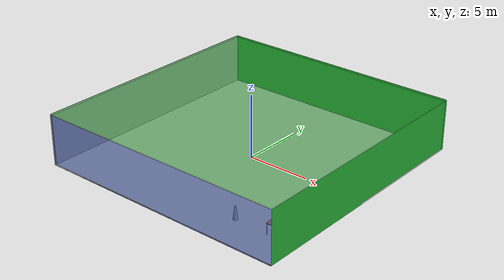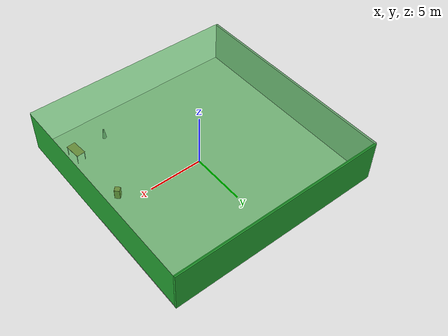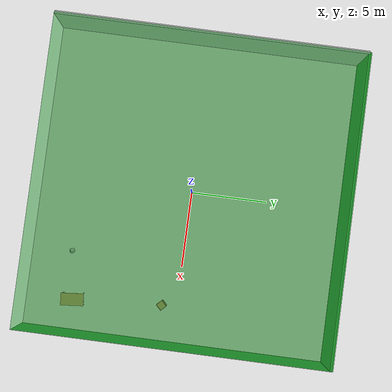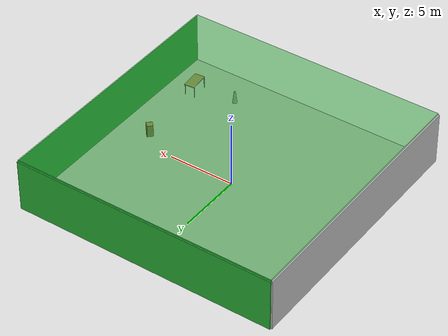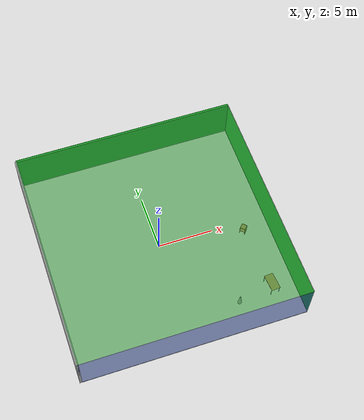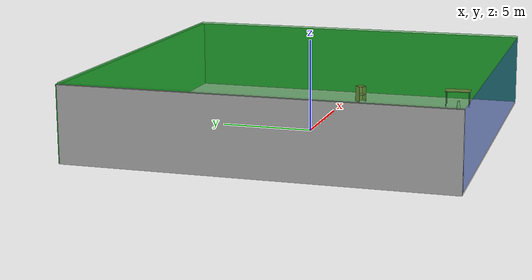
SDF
<sdf version="1.4">
 <world name="default">
  <physics type="ode">
   <max_step_size>0.001</max_step_size>
   <real_time_factor>1</real_time_factor>
   <real_time_update_rate>1000</real_time_update_rate>
   <gravity>0 0 -9.8</gravity>
  </physics>
  <scene><ambient>0.4 0.4 0.4 1</ambient><background>0.7 0.7 0.7 1</background><shadows>1</shadows></scene>
  <model name="Surrounding">
   <static>1</static>
   <link name="Ceiling">
    <collision name="Ceiling_Collision"><geometry><box><size>20 20 0.1</size></box></geometry></collision>
    <visual name="Ceiling_Visual">
     <geometry><box><size>20 20 0.1</size></box></geometry>
     <material>
      <script><uri>file://media/materials/scripts/gazebo.material</uri><name>Gazebo/GreenTransparent</name></script>
     </material>
    </visual>
    <pose>0 0 4.05 0 0 0</pose>
   </link>
   <link name="Wall_South">
    <collision name="Wall_South_Collision">
     <geometry><box><size>20 0 4</size></box></geometry>
     <pose>0 0 2 0 -0 0</pose>
    </collision>
    <visual name="Wall_South_Visual">
     <pose>0 0 2 0 -0 0</pose>
     <geometry><box><size>20 0 4</size></box></geometry>
     <material>
      <script><uri>file://media/materials/scripts/gazebo.material</uri><name>Gazebo/BlueTransparent</name></script>
     </material>
    </visual>
    <velocity_decay><linear>0</linear><angular>0</angular></velocity_decay>
    <pose>0 -10 0 0 -0 0</pose>
   </link>
   <link name="Wall_East">
    <collision name="Wall_21_Collision">
     <geometry><box><size>20 0 4</size></box></geometry>
     <pose>0 0 2 0 -0 0</pose>
    </collision>
    <visual name="Wall_21_Visual">
     <pose>0 0 2 0 -0 0</pose>
     <geometry><box><size>20 0 4</size></box></geometry>
     <material>
      <script><uri>file://media/materials/scripts/gazebo.material</uri><name>Gazebo/GreenGlow</name></script>
     </material>
    </visual>
    <velocity_decay><linear>0</linear><angular>0</angular></velocity_decay>
    <pose>10 0 0 0 -0 1.5708</pose>
   </link>
   <link name="Wall_North">
    <collision name="Wall_22_Collision">
     <geometry><box><size>20 0.2 4</size></box></geometry>
     <pose>0 0 2 0 -0 0</pose>
    </collision>
    <visual name="Wall_22_Visual">
     <pose>0 0 2 0 -0 0</pose>
     <geometry><box><size>20 0.2 4</size></box></geometry>
     <material>
      <script><uri>file://media/materials/scripts/gazebo.material</uri><name>Gazebo/Green</name></script>
     </material>
    </visual>
    <velocity_decay><linear>0</linear><angular>0</angular></velocity_decay>
    <pose>0 10 0 0 -0 0</pose>
   </link>
   <link name="Wall_West">
    <collision name="Wall_23_Collision">
     <geometry><box><size>20 0.2 4</size></box></geometry>
     <pose>0 0 2 0 -0 0</pose>
    </collision>
    <visual name="Wall_23_Visual">
     <pose>0 0 2 0 -0 0</pose>
     <geometry><box><size>20 0.2 4</size></box></geometry>
     <material>
      <script><uri>file://media/materials/scripts/gazebo.material</uri><name>Gazebo/Pioneer2Body</name></script>
     </material>
    </visual>
    <velocity_decay><linear>0</linear><angular>0</angular></velocity_decay>
    <pose>-10 0 0 0 0 -1.5708</pose>
   </link>
   <link name="Ground_link">
    <collision name="collision">
     <pose>0 0 .05 0 -0 0</pose>
     <geometry><box><size>20 20 0.1</size></box></geometry>
    </collision>
    <visual name="visual">
     <pose>0 0 .05 0 -0 0</pose>
     <geometry><box><size>20 20 0.1</size></box></geometry>
     <material>
      <script><uri>file://media/materials/scripts/gazebo.material</uri><name>Gazebo/CeilingTiled</name></script>
     </material>
    </visual>
   </link>
   <static>1</static>
  </model>
  <spherical_coordinates>
   <surface_model>EARTH_WGS84</surface_model>
   <latitude_deg>0</latitude_deg>
   <longitude_deg>0</longitude_deg>
   <elevation>0</elevation>
   <heading_deg>0</heading_deg>
  </spherical_coordinates>
  <light name="lightball_0" type="diffuse">
   <diffuse>0.8 0.8 0.8 1</diffuse>
   <specular>0.2 0.2 0.2 1</specular>
   <attenuation>
    <range>100</range>
    <constant>0.7</constant>
    <linear>0.01</linear>
    <quadratic>0.001</quadratic>
   </attenuation>
   <direction>-0.5 0.1 -0.9</direction>
   <pose>-0.992055530453 2.05406794875 3.55297930299 0 0 0</pose>
  </light>
  <light name="lightball_1" type="diffuse">
   <diffuse>0.8 0.8 0.8 1</diffuse>
   <specular>0.2 0.2 0.2 1</specular>
   <attenuation>
    <range>100</range>
    <constant>0.7</constant>
    <linear>0.01</linear>
    <quadratic>0.001</quadratic>
   </attenuation>
   <direction>-0.5 0.1 -0.9</direction>
   <pose>1.60645153202 -9.7350017005 3.1978124381 0 0 0</pose>
  </light>
  <light name="lightball_2" type="diffuse">
   <diffuse>0.8 0.8 0.8 1</diffuse>
   <specular>0.2 0.2 0.2 1</specular>
   <attenuation>
    <range>100</range>
    <constant>0.7</constant>
    <linear>0.01</linear>
    <quadratic>0.001</quadratic>
   </attenuation>
   <direction>-0.5 0.1 -0.9</direction>
   <pose>-7.719019354 3.60551937244 3.33387708844 0 0 0</pose>
  </light>
  <light name="lightball_3" type="diffuse">
   <diffuse>0.8 0.8 0.8 1</diffuse>
   <specular>0.2 0.2 0.2 1</specular>
   <attenuation>
    <range>100</range>
    <constant>0.7</constant>
    <linear>0.01</linear>
    <quadratic>0.001</quadratic>
   </attenuation>
   <direction>-0.5 0.1 -0.9</direction>
   <pose>-4.04116868007 2.56315323285 1.07550181081 0 0 0</pose>
  </light>
  <light name="lightball_4" type="diffuse">
   <diffuse>0.8 0.8 0.8 1</diffuse>
   <specular>0.2 0.2 0.2 1</specular>
   <attenuation>
    <range>100</range>
    <constant>0.7</constant>
    <linear>0.01</linear>
    <quadratic>0.001</quadratic>
   </attenuation>
   <direction>-0.5 0.1 -0.9</direction>
   <pose>2.05089934319 -2.94076091808 2.94170778973 0 0 0</pose>
  </light>
  <light name="lightball_5" type="diffuse">
   <diffuse>0.8 0.8 0.8 1</diffuse>
   <specular>0.2 0.2 0.2 1</specular>
   <attenuation>
    <range>100</range>
    <constant>0.7</constant>
    <linear>0.01</linear>
    <quadratic>0.001</quadratic>
   </attenuation>
   <direction>-0.5 0.1 -0.9</direction>
   <pose>2.22536124762 -0.342356407052 1.65744610067 0 0 0</pose>
  </light>
  <light name="lightball_6" type="diffuse">
   <diffuse>0.8 0.8 0.8 1</diffuse>
   <specular>0.2 0.2 0.2 1</specular>
   <attenuation>
    <range>100</range>
    <constant>0.7</constant>
    <linear>0.01</linear>
    <quadratic>0.001</quadratic>
   </attenuation>
   <direction>-0.5 0.1 -0.9</direction>
   <pose>4.61433432918 -2.30516403724 3.15683638047 0 0 0</pose>
  </light>
  <light name="lightball_7" type="diffuse">
   <diffuse>0.8 0.8 0.8 1</diffuse>
   <specular>0.2 0.2 0.2 1</specular>
   <attenuation>
    <range>100</range>
    <constant>0.7</constant>
    <linear>0.01</linear>
    <quadratic>0.001</quadratic>
   </attenuation>
   <direction>-0.5 0.1 -0.9</direction>
   <pose>8.71449855235 7.35259477483 2.0213947337 0 0 0</pose>
  </light>
  <light name="lightball_8" type="diffuse">
   <diffuse>0.8 0.8 0.8 1</diffuse>
   <specular>0.2 0.2 0.2 1</specular>
   <attenuation>
    <range>100</range>
    <constant>0.7</constant>
    <linear>0.01</linear>
    <quadratic>0.001</quadratic>
   </attenuation>
   <direction>-0.5 0.1 -0.9</direction>
   <pose>0.295299866323 -9.12760993312 2.09245205561 0 0 0</pose>
  </light>
  <light name="lightball_9" type="diffuse">
   <diffuse>0.8 0.8 0.8 1</diffuse>
   <specular>0.2 0.2 0.2 1</specular>
   <attenuation>
    <range>100</range>
    <constant>0.7</constant>
    <linear>0.01</linear>
    <quadratic>0.001</quadratic>
   </attenuation>
   <direction>-0.5 0.1 -0.9</direction>
   <pose>0.766999007658 -7.93255138684 3.34664162449 0 0 0</pose>
  </light>
  <light name="lightball_10" type="diffuse">
   <diffuse>0.8 0.8 0.8 1</diffuse>
   <specular>0.2 0.2 0.2 1</specular>
   <attenuation>
    <range>100</range>
    <constant>0.7</constant>
    <linear>0.01</linear>
    <quadratic>0.001</quadratic>
   </attenuation>
   <direction>-0.5 0.1 -0.9</direction>
   <pose>-5.17052319849 7.07582368918 3.12340782292 0 0 0</pose>
  </light>
  <light name="lightball_11" type="diffuse">
   <diffuse>0.8 0.8 0.8 1</diffuse>
   <specular>0.2 0.2 0.2 1</specular>
   <attenuation>
    <range>100</range>
    <constant>0.7</constant>
    <linear>0.01</linear>
    <quadratic>0.001</quadratic>
   </attenuation>
   <direction>-0.5 0.1 -0.9</direction>
   <pose>-7.11740005913 8.3460812668 2.00513695289 0 0 0</pose>
  </light>
  <light name="lightball_12" type="diffuse">
   <diffuse>0.8 0.8 0.8 1</diffuse>
   <specular>0.2 0.2 0.2 1</specular>
   <attenuation>
    <range>100</range>
    <constant>0.7</constant>
    <linear>0.01</linear>
    <quadratic>0.001</quadratic>
   </attenuation>
   <direction>-0.5 0.1 -0.9</direction>
   <pose>3.20765268148 9.99440659468 1.70590353407 0 0 0</pose>
  </light>
  <light name="lightball_13" type="diffuse">
   <diffuse>0.8 0.8 0.8 1</diffuse>
   <specular>0.2 0.2 0.2 1</specular>
   <attenuation>
    <range>100</range>
    <constant>0.7</constant>
    <linear>0.01</linear>
    <quadratic>0.001</quadratic>
   </attenuation>
   <direction>-0.5 0.1 -0.9</direction>
   <pose>-0.976877891225 3.96392170046 3.13730622862 0 0 0</pose>
  </light>
  <include>
   <uri>model://construction_cone</uri>
   <pose>4.85357478095 -7.36944447681 0 0 0 2.12875263812</pose>
  </include>
  <include><uri>model://table</uri><pose>7.96846412892 -6.83638854226 0 0 0 1.65770562413</pose></include>
  <include><uri>model://cabinet</uri><pose>7.60117213222 -1.00189321897 0 0 0 0.778140997468</pose></include>
 </world>
</sdf>

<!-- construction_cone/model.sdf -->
<sdf version="1.5">
  <model name="Construction Cone">
    <link name="link">
      <collision name="collision">
        <geometry>
          <mesh>
            <scale>10 10 10</scale>
            <uri>file://isr-testbed/construction_cone/meshes/construction_cone.dae</uri>
          </mesh>
        </geometry>
      </collision>
      <visual name="visual">
        <geometry>
          <mesh>
            <scale>10 10 10</scale>
            <uri>file://isr-testbed/construction_cone/meshes/construction_cone.dae</uri>
          </mesh>
        </geometry>
      </visual>
    </link>
  </model>
</sdf>

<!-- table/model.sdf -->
<sdf version="1.5">
  <model name="table">
    <static>true</static>
    <link name="link">
      <collision name="surface">
        <pose>0 0 1.0 0 0 0</pose>
        <geometry>
          <box>
            <size>1.5 0.8 0.03</size>
          </box>
        </geometry>
        <surface>
          <friction>
            <ode>
              <mu>0.6</mu>
              <mu2>0.6</mu2>
            </ode>
          </friction>
        </surface>
      </collision>
      <visual name="visual1">
        <pose>0 0 1.0 0 0 0</pose>
        <geometry>
          <box>
            <size>1.5 0.8 0.03</size>
          </box>
        </geometry>
        <material>
          <script>
            <uri>model://media/materials/scripts/gazebo.material</uri>
            <name>Gazebo/Wood</name>
          </script>
        </material>
      </visual>
      <collision name="front_left_leg">
        <pose>0.68 0.38 0.5 0 0 0</pose>
        <geometry>
          <cylinder>
            <radius>0.02</radius>
            <length>1.0</length>
          </cylinder>
        </geometry>
      </collision>
      <visual name="front_left_leg">
        <pose>0.68 0.38 0.5 0 0 0</pose>
        <geometry>
          <cylinder>
            <radius>0.02</radius>
            <length>1.0</length>
          </cylinder>
        </geometry>
        <material>
          <script>
            <uri>model://media/materials/scripts/gazebo.material</uri>
            <name>Gazebo/Grey</name>
          </script>
        </material>
      </visual>
      <collision name="front_right_leg">
        <pose>0.68 -0.38 0.5 0 0 0</pose>
        <geometry>
          <cylinder>
            <radius>0.02</radius>
            <length>1.0</length>
          </cylinder>
        </geometry>
      </collision>
      <visual name="front_right_leg">
        <pose>0.68 -0.38 0.5 0 0 0</pose>
        <geometry>
          <cylinder>
            <radius>0.02</radius>
            <length>1.0</length>
          </cylinder>
        </geometry>
        <material>
          <script>
            <uri>model://media/materials/scripts/gazebo.material</uri>
            <name>Gazebo/Grey</name>
          </script>
        </material>
      </visual>
      <collision name="back_right_leg">
        <pose>-0.68 -0.38 0.5 0 0 0</pose>
        <geometry>
          <cylinder>
            <radius>0.02</radius>
            <length>1.0</length>
          </cylinder>
        </geometry>
      </collision>
      <visual name="back_right_leg">
        <pose>-0.68 -0.38 0.5 0 0 0</pose>
        <geometry>
          <cylinder>
            <radius>0.02</radius>
            <length>1.0</length>
          </cylinder>
        </geometry>
        <material>
          <script>
            <uri>model://media/materials/scripts/gazebo.material</uri>
            <name>Gazebo/Grey</name>
          </script>
        </material>
      </visual>
      <collision name="back_left_leg">
        <pose>-0.68 0.38 0.5 0 0 0</pose>
        <geometry>
          <cylinder>
            <radius>0.02</radius>
            <length>1.0</length>
          </cylinder>
        </geometry>
      </collision>
      <visual name="back_left_leg">
        <pose>-0.68 0.38 0.5 0 0 0</pose>
        <geometry>
          <cylinder>
            <radius>0.02</radius>
            <length>1.0</length>
          </cylinder>
        </geometry>
        <material>
          <script>
            <uri>model://media/materials/scripts/gazebo.material</uri>
            <name>Gazebo/Grey</name>
          </script>
        </material>
      </visual>
    </link>
  </model>
</sdf>

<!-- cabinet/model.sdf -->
<sdf version="1.5">
  <model name="cabinet">
    <static>true</static>
    <link name="cabinet_bottom_plate">
      <inertial>
        <pose>0 0 -1 0 0 0</pose>
        <inertia>
          <ixx>2.050000</ixx>
          <ixy>0</ixy>
          <ixz>0</ixz>
          <iyy>2.050000</iyy>
          <iyz>0</iyz>
          <izz>2.050000</izz>
        </inertia>
        <mass>25.000000</mass>
      </inertial>
      <collision name="cabinet_bottom_plate_geom">
        <pose>0 0 0.010000 0 0 0</pose>
        <geometry>
          <box>
            <size>0.450000 0.450000 0.020000</size>
          </box>
        </geometry>
      </collision>
      <visual name="cabinet_bottom_plate_geom_visual">
        <pose>0 0 0.010000 0 0 0</pose>
        <geometry>
          <box>
            <size>0.450000 0.450000 0.020000</size>
          </box>
        </geometry>
        <material>
          <script>
            <uri>model://media/materials/scripts/gazebo.material</uri>
            <name>Gazebo/Wood</name>
          </script>
        </material>
      </visual>
      <collision name="cabinet_bottom_plate_geom_cabinet_back_plate">
        <pose>0.235000 0 0.510000 0 0 0</pose>
        <geometry>
          <box>
            <size>0.020000 0.450000 1.020000</size>
          </box>
        </geometry>
      </collision>
      <visual name="cabinet_bottom_plate_geom_cabinet_back_plate_visual">
        <pose>0.235000 0 0.510000 0 0 0</pose>
        <geometry>
          <box>
            <size>0.020000 0.450000 1.020000</size>
          </box>
        </geometry>
        <material>
          <script>
            <uri>model://media/materials/scripts/gazebo.material</uri>
            <name>Gazebo/Wood</name>
          </script>
        </material>
      </visual>
      <collision name="cabinet_bottom_plate_geom_cabinet_left_plate">
        <pose>0 0.235000 0.510000 0 0 0</pose>
        <geometry>
          <box>
            <size>0.450000 0.020000 1.020000</size>
          </box>
        </geometry>
      </collision>
      <visual name="cabinet_bottom_plate_geom_cabinet_left_plate_visual">
        <pose>0 0.235000 0.510000 0 0 0</pose>
        <geometry>
          <box>
            <size>0.450000 0.020000 1.020000</size>
          </box>
        </geometry>
        <material>
          <script>
            <uri>model://media/materials/scripts/gazebo.material</uri>
            <name>Gazebo/Wood</name>
          </script>
        </material>
      </visual>
      <collision name="cabinet_bottom_plate_geom_cabinet_middle_plate">
        <pose>0 0 0.510000 0 0 0</pose>
        <geometry>
          <box>
            <size>0.450000 0.450000 0.020000</size>
          </box>
        </geometry>
      </collision>
      <visual name="cabinet_bottom_plate_geom_cabinet_middle_plate_visual">
        <pose>0 0 0.510000 0 0 0</pose>
        <geometry>
          <box>
            <size>0.450000 0.450000 0.020000</size>
          </box>
        </geometry>
        <material>
          <script>
            <uri>model://media/materials/scripts/gazebo.material</uri>
            <name>Gazebo/Wood</name>
          </script>
        </material>
      </visual>
      <collision name="cabinet_bottom_plate_geom_cabinet_right_plate">
        <pose>0 -0.235000 0.510000 0 0 0</pose>
        <geometry>
          <box>
            <size>0.450000 0.020000 1.020000</size>
          </box>
        </geometry>
      </collision>
      <visual name="cabinet_bottom_plate_geom_cabinet_right_plate_visual">
        <pose>0 -0.235000 0.510000 0 0 0</pose>
        <geometry>
          <box>
            <size>0.450000 0.020000 1.020000</size>
          </box>
        </geometry>
        <material>
          <script>
            <uri>model://media/materials/scripts/gazebo.material</uri>
            <name>Gazebo/Wood</name>
          </script>
        </material>
      </visual>
      <collision name="cabinet_bottom_plate_geom_cabinet_top_plate">
        <pose>0 0 1.010000 0 0 0</pose>
        <geometry>
          <box>
            <size>0.450000 0.450000 0.020000</size>
          </box>
        </geometry>
      </collision>
      <visual name="cabinet_bottom_plate_geom_cabinet_top_plate_visual">
        <pose>0 0 1.010000 0 0 0</pose>
        <geometry>
          <box>
            <size>0.450000 0.450000 0.020000</size>
          </box>
        </geometry>
        <material>
          <script>
            <uri>model://media/materials/scripts/gazebo.material</uri>
            <name>Gazebo/Wood</name>
          </script>
        </material>
      </visual>
    </link>
  </model>
</sdf>
